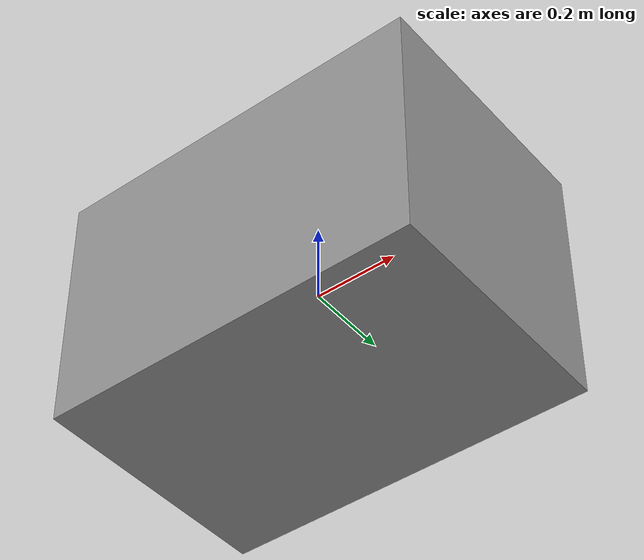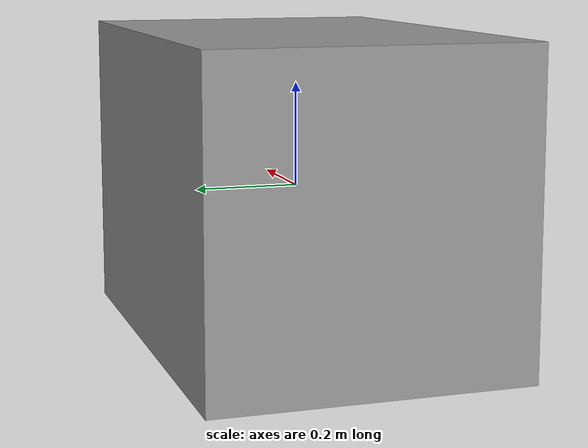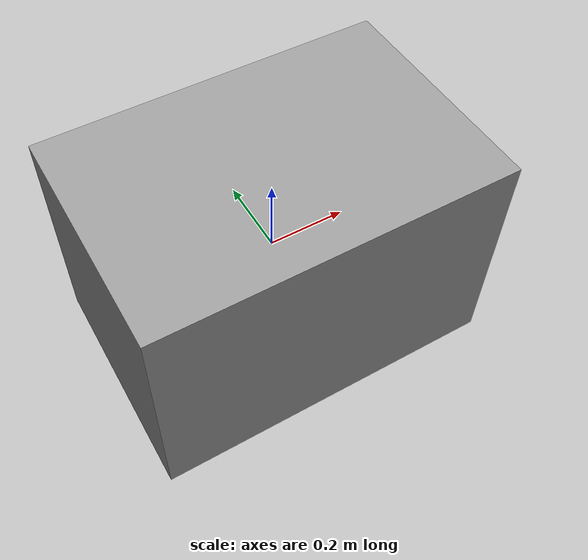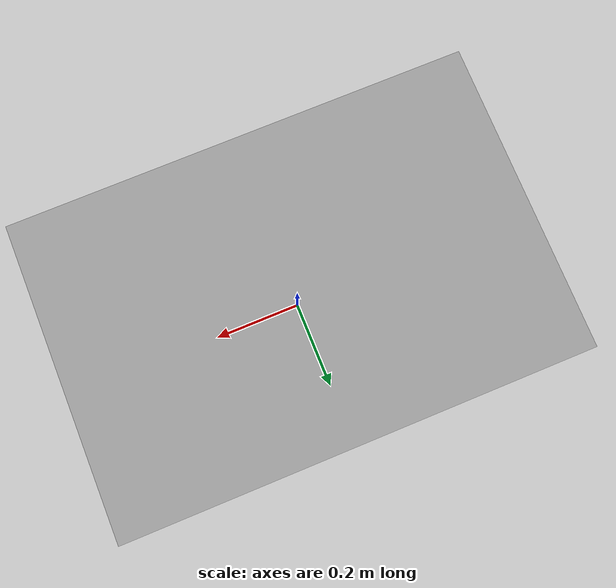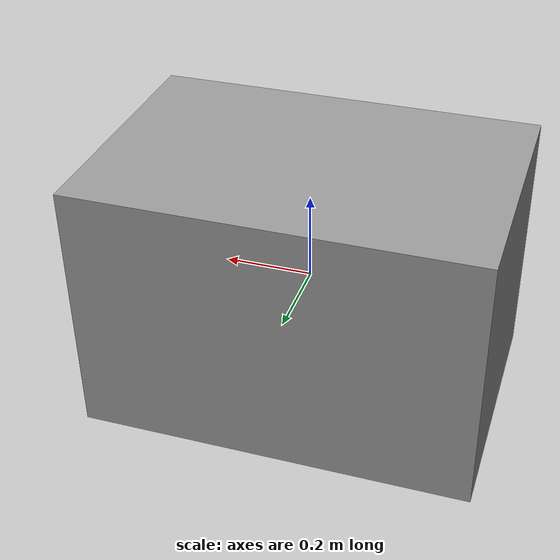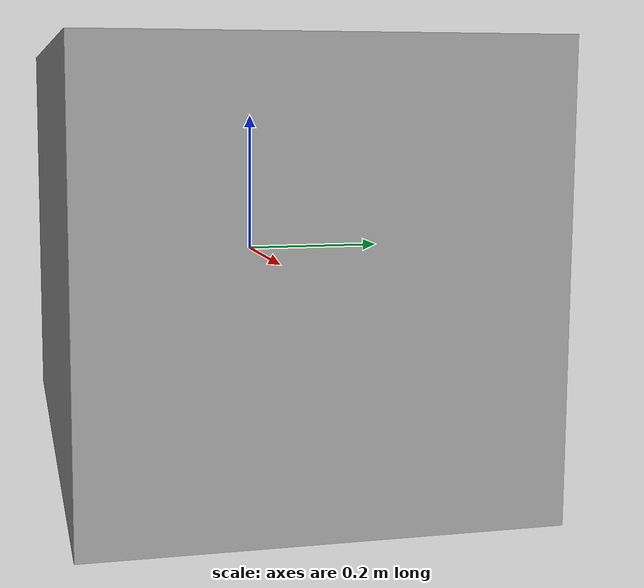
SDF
<?xml version='1.0'?>
<sdf version='1.7'>
  <model name='concrete_block'>
    <!-- 0.9 x 0.6 x 0.6 m concrete block                               -->
    <!-- mass = 0.9 * 0.6 * 0.6 * 2400 kg/m^3 = 777.6 kg                -->
    <!-- inertia (solid box): Ixx = m/12*(b^2+c^2), etc.                 -->
    <!--   Ixx = 778/12*(0.6^2+0.6^2) = 46.7 kg*m^2                     -->
    <!--   Iyy = 778/12*(0.9^2+0.6^2) = 75.5 kg*m^2                     -->
    <!--   Izz = 778/12*(0.9^2+0.6^2) = 75.5 kg*m^2                     -->
    <!-- Model origin is at box centre.                                   -->
    <link name='link'>
      <inertial>
        <mass>778</mass>
        <inertia>
          <ixx>46.7</ixx>
          <ixy>0</ixy>
          <ixz>0</ixz>
          <iyy>75.5</iyy>
          <iyz>0</iyz>
          <izz>75.5</izz>
        </inertia>
        <pose>0 0 0 0 0 0</pose>
      </inertial>
      <pose>0 0 0 0 0 0</pose>

      <visual name='visual'>
        <pose>0 0 0 0 0 0</pose>
        <geometry>
          <box>
            <size>0.9 0.6 0.6</size>
          </box>
        </geometry>
        <material>
          <ambient>0.6 0.6 0.6 1</ambient>
          <diffuse>0.6 0.6 0.6 1</diffuse>
          <specular>0.1 0.1 0.1 1</specular>
        </material>
      </visual>

      <collision name='collision'>
        <pose>0 0 0 0 0 0</pose>
        <geometry>
          <box>
            <size>0.9 0.6 0.6</size>
          </box>
        </geometry>
        <surface>
          <friction>
            <ode>
              <mu>100</mu>
              <mu2>100</mu2>
              <slip1>0</slip1>
              <slip2>0</slip2>
            </ode>
          </friction>
          <contact>
            <ode>
              <max_vel>0.1</max_vel>
              <min_depth>0.001</min_depth>
            </ode>
            <collide_without_contact>0</collide_without_contact>
            <collide_without_contact_bitmask>1</collide_without_contact_bitmask>
            <collide_bitmask>1</collide_bitmask>
          </contact>
        </surface>
      </collision>
    </link>
  </model>
</sdf>
